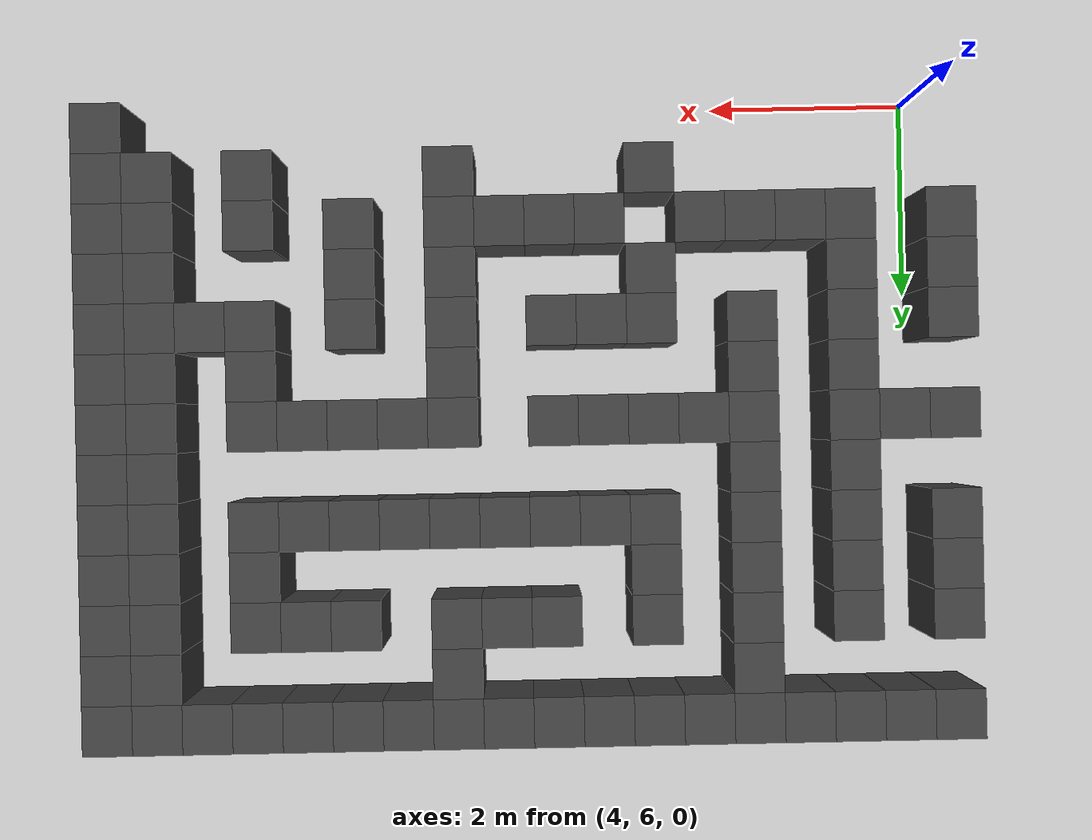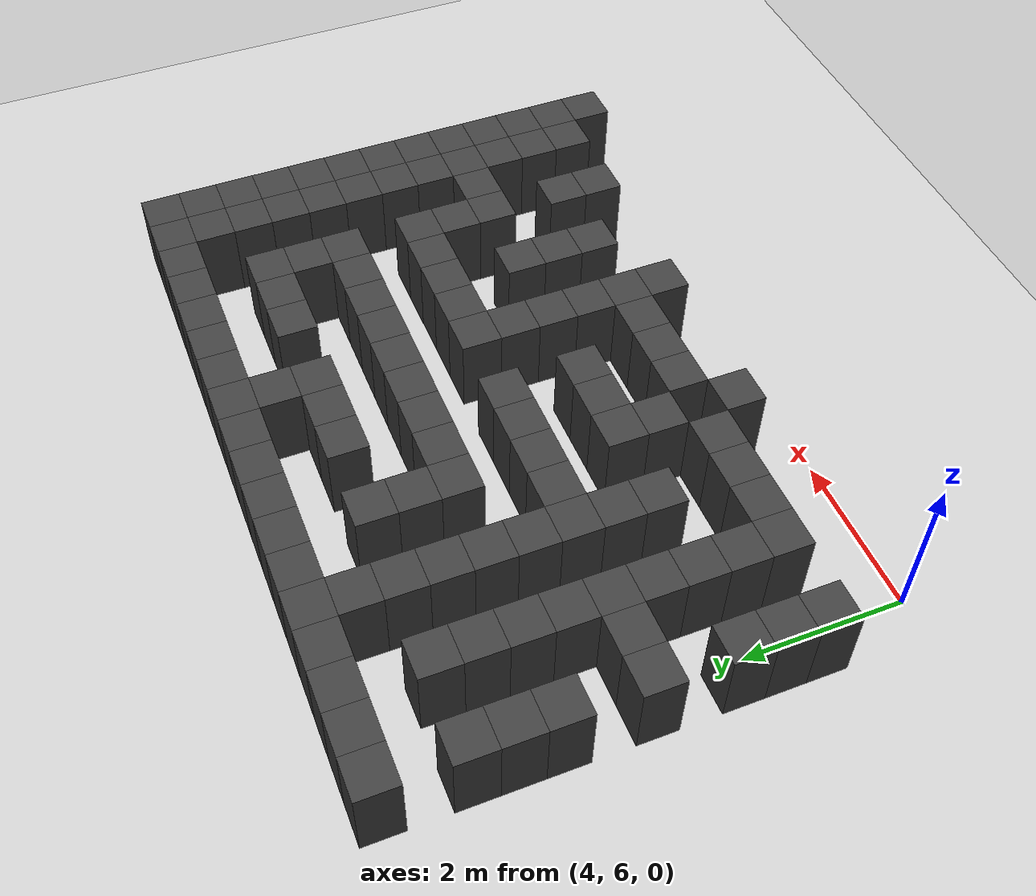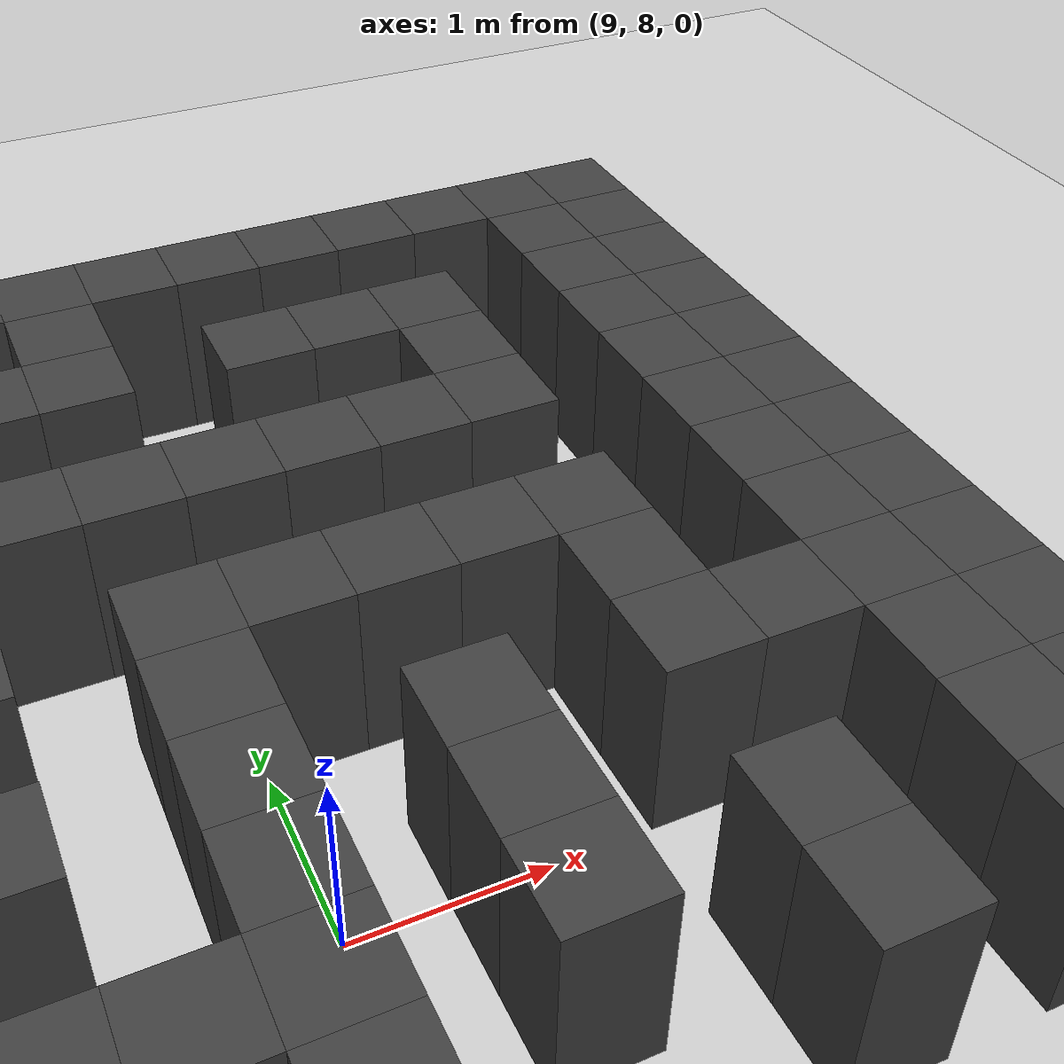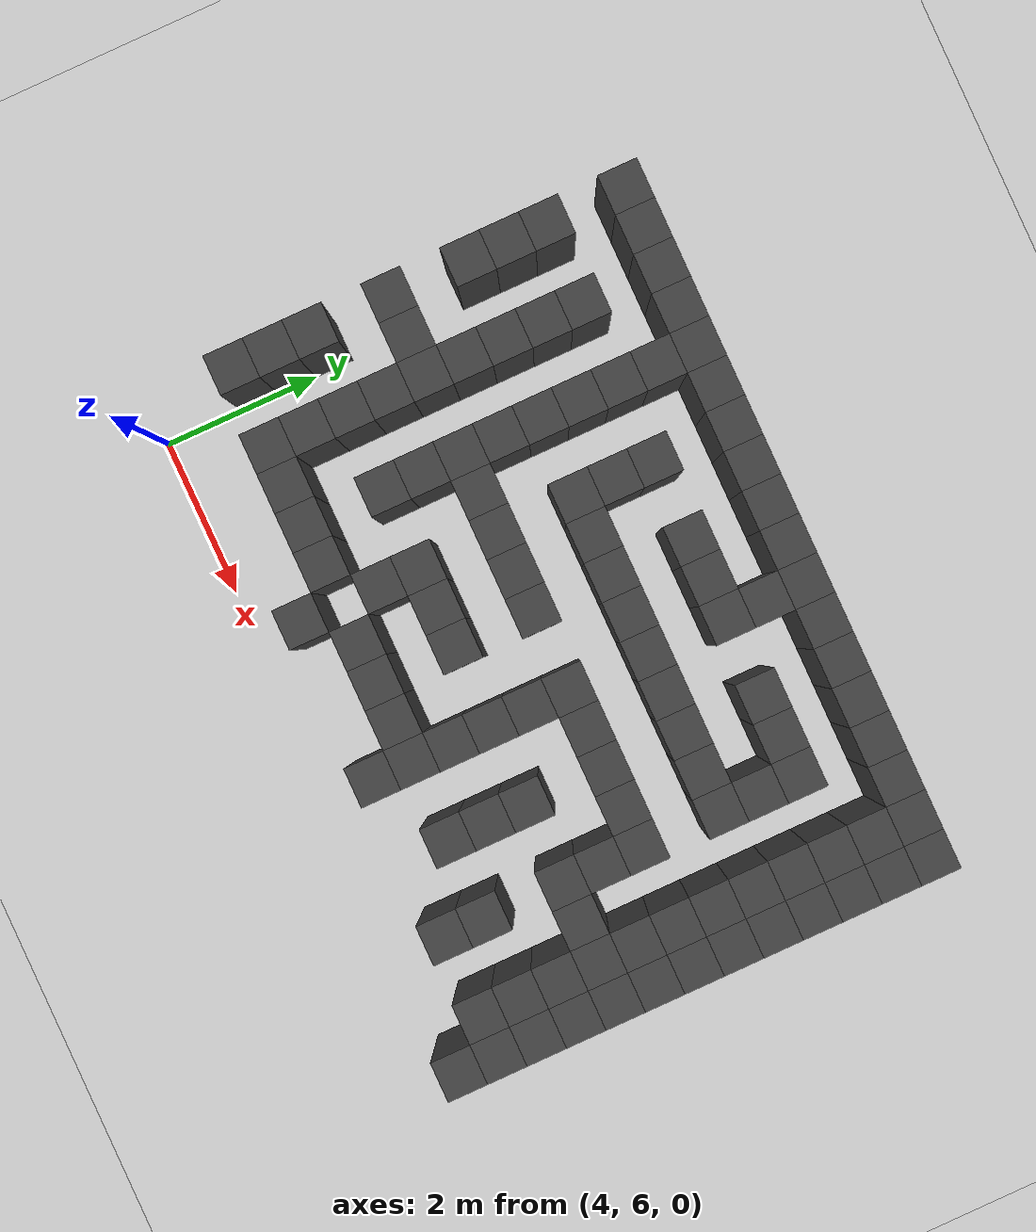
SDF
<sdf version="1.7">
 <world name="map_18313">
  <model name="ground_plane">
   <static>true</static>
   <link name="link">
    <collision name="collision">
     <geometry><plane><normal>0 0 1</normal><size>200 200</size></plane></geometry>
    </collision>
    <visual name="visual">
     <geometry><plane><normal>0 0 1</normal><size>200 200</size></plane></geometry>
     <material><ambient>0.8 0.8 0.8 1</ambient><diffuse>0.8 0.8 0.8 1</diffuse></material>
    </visual>
   </link>
  </model>
  <model name="maze_environment">
   <static>true</static>
   <link name="wall_32">
    <pose>3.750 12.250 0.500 0 0 0</pose>
    <collision name="col"><geometry><box><size>0.5 0.5 1.0</size></box></geometry></collision>
    <visual name="vis">
     <geometry><box><size>0.5 0.5 1.0</size></box></geometry>
     <material><ambient>0.15 0.15 0.15 1</ambient><diffuse>0.25 0.25 0.25 1</diffuse></material>
    </visual>
   </link>
   <link name="wall_33">
    <pose>4.250 12.250 0.500 0 0 0</pose>
    <collision name="col"><geometry><box><size>0.5 0.5 1.0</size></box></geometry></collision>
    <visual name="vis">
     <geometry><box><size>0.5 0.5 1.0</size></box></geometry>
     <material><ambient>0.15 0.15 0.15 1</ambient><diffuse>0.25 0.25 0.25 1</diffuse></material>
    </visual>
   </link>
   <link name="wall_34">
    <pose>4.750 12.250 0.500 0 0 0</pose>
    <collision name="col"><geometry><box><size>0.5 0.5 1.0</size></box></geometry></collision>
    <visual name="vis">
     <geometry><box><size>0.5 0.5 1.0</size></box></geometry>
     <material><ambient>0.15 0.15 0.15 1</ambient><diffuse>0.25 0.25 0.25 1</diffuse></material>
    </visual>
   </link>
   <link name="wall_35">
    <pose>5.250 12.250 0.500 0 0 0</pose>
    <collision name="col"><geometry><box><size>0.5 0.5 1.0</size></box></geometry></collision>
    <visual name="vis">
     <geometry><box><size>0.5 0.5 1.0</size></box></geometry>
     <material><ambient>0.15 0.15 0.15 1</ambient><diffuse>0.25 0.25 0.25 1</diffuse></material>
    </visual>
   </link>
   <link name="wall_36">
    <pose>5.750 12.250 0.500 0 0 0</pose>
    <collision name="col"><geometry><box><size>0.5 0.5 1.0</size></box></geometry></collision>
    <visual name="vis">
     <geometry><box><size>0.5 0.5 1.0</size></box></geometry>
     <material><ambient>0.15 0.15 0.15 1</ambient><diffuse>0.25 0.25 0.25 1</diffuse></material>
    </visual>
   </link>
   <link name="wall_37">
    <pose>6.250 12.250 0.500 0 0 0</pose>
    <collision name="col"><geometry><box><size>0.5 0.5 1.0</size></box></geometry></collision>
    <visual name="vis">
     <geometry><box><size>0.5 0.5 1.0</size></box></geometry>
     <material><ambient>0.15 0.15 0.15 1</ambient><diffuse>0.25 0.25 0.25 1</diffuse></material>
    </visual>
   </link>
   <link name="wall_38">
    <pose>6.750 12.250 0.500 0 0 0</pose>
    <collision name="col"><geometry><box><size>0.5 0.5 1.0</size></box></geometry></collision>
    <visual name="vis">
     <geometry><box><size>0.5 0.5 1.0</size></box></geometry>
     <material><ambient>0.15 0.15 0.15 1</ambient><diffuse>0.25 0.25 0.25 1</diffuse></material>
    </visual>
   </link>
   <link name="wall_39">
    <pose>7.250 12.250 0.500 0 0 0</pose>
    <collision name="col"><geometry><box><size>0.5 0.5 1.0</size></box></geometry></collision>
    <visual name="vis">
     <geometry><box><size>0.5 0.5 1.0</size></box></geometry>
     <material><ambient>0.15 0.15 0.15 1</ambient><diffuse>0.25 0.25 0.25 1</diffuse></material>
    </visual>
   </link>
   <link name="wall_40">
    <pose>7.750 12.250 0.500 0 0 0</pose>
    <collision name="col"><geometry><box><size>0.5 0.5 1.0</size></box></geometry></collision>
    <visual name="vis">
     <geometry><box><size>0.5 0.5 1.0</size></box></geometry>
     <material><ambient>0.15 0.15 0.15 1</ambient><diffuse>0.25 0.25 0.25 1</diffuse></material>
    </visual>
   </link>
   <link name="wall_41">
    <pose>8.250 12.250 0.500 0 0 0</pose>
    <collision name="col"><geometry><box><size>0.5 0.5 1.0</size></box></geometry></collision>
    <visual name="vis">
     <geometry><box><size>0.5 0.5 1.0</size></box></geometry>
     <material><ambient>0.15 0.15 0.15 1</ambient><diffuse>0.25 0.25 0.25 1</diffuse></material>
    </visual>
   </link>
   <link name="wall_42">
    <pose>8.750 12.250 0.500 0 0 0</pose>
    <collision name="col"><geometry><box><size>0.5 0.5 1.0</size></box></geometry></collision>
    <visual name="vis">
     <geometry><box><size>0.5 0.5 1.0</size></box></geometry>
     <material><ambient>0.15 0.15 0.15 1</ambient><diffuse>0.25 0.25 0.25 1</diffuse></material>
    </visual>
   </link>
   <link name="wall_43">
    <pose>9.250 12.250 0.500 0 0 0</pose>
    <collision name="col"><geometry><box><size>0.5 0.5 1.0</size></box></geometry></collision>
    <visual name="vis">
     <geometry><box><size>0.5 0.5 1.0</size></box></geometry>
     <material><ambient>0.15 0.15 0.15 1</ambient><diffuse>0.25 0.25 0.25 1</diffuse></material>
    </visual>
   </link>
   <link name="wall_44">
    <pose>9.750 12.250 0.500 0 0 0</pose>
    <collision name="col"><geometry><box><size>0.5 0.5 1.0</size></box></geometry></collision>
    <visual name="vis">
     <geometry><box><size>0.5 0.5 1.0</size></box></geometry>
     <material><ambient>0.15 0.15 0.15 1</ambient><diffuse>0.25 0.25 0.25 1</diffuse></material>
    </visual>
   </link>
   <link name="wall_45">
    <pose>10.250 12.250 0.500 0 0 0</pose>
    <collision name="col"><geometry><box><size>0.5 0.5 1.0</size></box></geometry></collision>
    <visual name="vis">
     <geometry><box><size>0.5 0.5 1.0</size></box></geometry>
     <material><ambient>0.15 0.15 0.15 1</ambient><diffuse>0.25 0.25 0.25 1</diffuse></material>
    </visual>
   </link>
   <link name="wall_46">
    <pose>10.750 12.250 0.500 0 0 0</pose>
    <collision name="col"><geometry><box><size>0.5 0.5 1.0</size></box></geometry></collision>
    <visual name="vis">
     <geometry><box><size>0.5 0.5 1.0</size></box></geometry>
     <material><ambient>0.15 0.15 0.15 1</ambient><diffuse>0.25 0.25 0.25 1</diffuse></material>
    </visual>
   </link>
   <link name="wall_47">
    <pose>11.250 12.250 0.500 0 0 0</pose>
    <collision name="col"><geometry><box><size>0.5 0.5 1.0</size></box></geometry></collision>
    <visual name="vis">
     <geometry><box><size>0.5 0.5 1.0</size></box></geometry>
     <material><ambient>0.15 0.15 0.15 1</ambient><diffuse>0.25 0.25 0.25 1</diffuse></material>
    </visual>
   </link>
   <link name="wall_48">
    <pose>11.750 12.250 0.500 0 0 0</pose>
    <collision name="col"><geometry><box><size>0.5 0.5 1.0</size></box></geometry></collision>
    <visual name="vis">
     <geometry><box><size>0.5 0.5 1.0</size></box></geometry>
     <material><ambient>0.15 0.15 0.15 1</ambient><diffuse>0.25 0.25 0.25 1</diffuse></material>
    </visual>
   </link>
   <link name="wall_49">
    <pose>12.250 12.250 0.500 0 0 0</pose>
    <collision name="col"><geometry><box><size>0.5 0.5 1.0</size></box></geometry></collision>
    <visual name="vis">
     <geometry><box><size>0.5 0.5 1.0</size></box></geometry>
     <material><ambient>0.15 0.15 0.15 1</ambient><diffuse>0.25 0.25 0.25 1</diffuse></material>
    </visual>
   </link>
   <link name="wall_56">
    <pose>5.750 11.750 0.500 0 0 0</pose>
    <collision name="col"><geometry><box><size>0.5 0.5 1.0</size></box></geometry></collision>
    <visual name="vis">
     <geometry><box><size>0.5 0.5 1.0</size></box></geometry>
     <material><ambient>0.15 0.15 0.15 1</ambient><diffuse>0.25 0.25 0.25 1</diffuse></material>
    </visual>
   </link>
   <link name="wall_57">
    <pose>8.750 11.750 0.500 0 0 0</pose>
    <collision name="col"><geometry><box><size>0.5 0.5 1.0</size></box></geometry></collision>
    <visual name="vis">
     <geometry><box><size>0.5 0.5 1.0</size></box></geometry>
     <material><ambient>0.15 0.15 0.15 1</ambient><diffuse>0.25 0.25 0.25 1</diffuse></material>
    </visual>
   </link>
   <link name="wall_58">
    <pose>11.750 11.750 0.500 0 0 0</pose>
    <collision name="col"><geometry><box><size>0.5 0.5 1.0</size></box></geometry></collision>
    <visual name="vis">
     <geometry><box><size>0.5 0.5 1.0</size></box></geometry>
     <material><ambient>0.15 0.15 0.15 1</ambient><diffuse>0.25 0.25 0.25 1</diffuse></material>
    </visual>
   </link>
   <link name="wall_59">
    <pose>12.250 11.750 0.500 0 0 0</pose>
    <collision name="col"><geometry><box><size>0.5 0.5 1.0</size></box></geometry></collision>
    <visual name="vis">
     <geometry><box><size>0.5 0.5 1.0</size></box></geometry>
     <material><ambient>0.15 0.15 0.15 1</ambient><diffuse>0.25 0.25 0.25 1</diffuse></material>
    </visual>
   </link>
   <link name="wall_81">
    <pose>3.750 11.250 0.500 0 0 0</pose>
    <collision name="col"><geometry><box><size>0.5 0.5 1.0</size></box></geometry></collision>
    <visual name="vis">
     <geometry><box><size>0.5 0.5 1.0</size></box></geometry>
     <material><ambient>0.15 0.15 0.15 1</ambient><diffuse>0.25 0.25 0.25 1</diffuse></material>
    </visual>
   </link>
   <link name="wall_82">
    <pose>4.750 11.250 0.500 0 0 0</pose>
    <collision name="col"><geometry><box><size>0.5 0.5 1.0</size></box></geometry></collision>
    <visual name="vis">
     <geometry><box><size>0.5 0.5 1.0</size></box></geometry>
     <material><ambient>0.15 0.15 0.15 1</ambient><diffuse>0.25 0.25 0.25 1</diffuse></material>
    </visual>
   </link>
   <link name="wall_83">
    <pose>5.750 11.250 0.500 0 0 0</pose>
    <collision name="col"><geometry><box><size>0.5 0.5 1.0</size></box></geometry></collision>
    <visual name="vis">
     <geometry><box><size>0.5 0.5 1.0</size></box></geometry>
     <material><ambient>0.15 0.15 0.15 1</ambient><diffuse>0.25 0.25 0.25 1</diffuse></material>
    </visual>
   </link>
   <link name="wall_84">
    <pose>6.750 11.250 0.500 0 0 0</pose>
    <collision name="col"><geometry><box><size>0.5 0.5 1.0</size></box></geometry></collision>
    <visual name="vis">
     <geometry><box><size>0.5 0.5 1.0</size></box></geometry>
     <material><ambient>0.15 0.15 0.15 1</ambient><diffuse>0.25 0.25 0.25 1</diffuse></material>
    </visual>
   </link>
   <link name="wall_85">
    <pose>7.750 11.250 0.500 0 0 0</pose>
    <collision name="col"><geometry><box><size>0.5 0.5 1.0</size></box></geometry></collision>
    <visual name="vis">
     <geometry><box><size>0.5 0.5 1.0</size></box></geometry>
     <material><ambient>0.15 0.15 0.15 1</ambient><diffuse>0.25 0.25 0.25 1</diffuse></material>
    </visual>
   </link>
   <link name="wall_86">
    <pose>8.250 11.250 0.500 0 0 0</pose>
    <collision name="col"><geometry><box><size>0.5 0.5 1.0</size></box></geometry></collision>
    <visual name="vis">
     <geometry><box><size>0.5 0.5 1.0</size></box></geometry>
     <material><ambient>0.15 0.15 0.15 1</ambient><diffuse>0.25 0.25 0.25 1</diffuse></material>
    </visual>
   </link>
   <link name="wall_87">
    <pose>8.750 11.250 0.500 0 0 0</pose>
    <collision name="col"><geometry><box><size>0.5 0.5 1.0</size></box></geometry></collision>
    <visual name="vis">
     <geometry><box><size>0.5 0.5 1.0</size></box></geometry>
     <material><ambient>0.15 0.15 0.15 1</ambient><diffuse>0.25 0.25 0.25 1</diffuse></material>
    </visual>
   </link>
   <link name="wall_88">
    <pose>9.750 11.250 0.500 0 0 0</pose>
    <collision name="col"><geometry><box><size>0.5 0.5 1.0</size></box></geometry></collision>
    <visual name="vis">
     <geometry><box><size>0.5 0.5 1.0</size></box></geometry>
     <material><ambient>0.15 0.15 0.15 1</ambient><diffuse>0.25 0.25 0.25 1</diffuse></material>
    </visual>
   </link>
   <link name="wall_89">
    <pose>10.250 11.250 0.500 0 0 0</pose>
    <collision name="col"><geometry><box><size>0.5 0.5 1.0</size></box></geometry></collision>
    <visual name="vis">
     <geometry><box><size>0.5 0.5 1.0</size></box></geometry>
     <material><ambient>0.15 0.15 0.15 1</ambient><diffuse>0.25 0.25 0.25 1</diffuse></material>
    </visual>
   </link>
   <link name="wall_90">
    <pose>10.750 11.250 0.500 0 0 0</pose>
    <collision name="col"><geometry><box><size>0.5 0.5 1.0</size></box></geometry></collision>
    <visual name="vis">
     <geometry><box><size>0.5 0.5 1.0</size></box></geometry>
     <material><ambient>0.15 0.15 0.15 1</ambient><diffuse>0.25 0.25 0.25 1</diffuse></material>
    </visual>
   </link>
   <link name="wall_91">
    <pose>11.750 11.250 0.500 0 0 0</pose>
    <collision name="col"><geometry><box><size>0.5 0.5 1.0</size></box></geometry></collision>
    <visual name="vis">
     <geometry><box><size>0.5 0.5 1.0</size></box></geometry>
     <material><ambient>0.15 0.15 0.15 1</ambient><diffuse>0.25 0.25 0.25 1</diffuse></material>
    </visual>
   </link>
   <link name="wall_92">
    <pose>12.250 11.250 0.500 0 0 0</pose>
    <collision name="col"><geometry><box><size>0.5 0.5 1.0</size></box></geometry></collision>
    <visual name="vis">
     <geometry><box><size>0.5 0.5 1.0</size></box></geometry>
     <material><ambient>0.15 0.15 0.15 1</ambient><diffuse>0.25 0.25 0.25 1</diffuse></material>
    </visual>
   </link>
   <link name="wall_102">
    <pose>3.750 10.750 0.500 0 0 0</pose>
    <collision name="col"><geometry><box><size>0.5 0.5 1.0</size></box></geometry></collision>
    <visual name="vis">
     <geometry><box><size>0.5 0.5 1.0</size></box></geometry>
     <material><ambient>0.15 0.15 0.15 1</ambient><diffuse>0.25 0.25 0.25 1</diffuse></material>
    </visual>
   </link>
   <link name="wall_103">
    <pose>4.750 10.750 0.500 0 0 0</pose>
    <collision name="col"><geometry><box><size>0.5 0.5 1.0</size></box></geometry></collision>
    <visual name="vis">
     <geometry><box><size>0.5 0.5 1.0</size></box></geometry>
     <material><ambient>0.15 0.15 0.15 1</ambient><diffuse>0.25 0.25 0.25 1</diffuse></material>
    </visual>
   </link>
   <link name="wall_104">
    <pose>5.750 10.750 0.500 0 0 0</pose>
    <collision name="col"><geometry><box><size>0.5 0.5 1.0</size></box></geometry></collision>
    <visual name="vis">
     <geometry><box><size>0.5 0.5 1.0</size></box></geometry>
     <material><ambient>0.15 0.15 0.15 1</ambient><diffuse>0.25 0.25 0.25 1</diffuse></material>
    </visual>
   </link>
   <link name="wall_105">
    <pose>6.750 10.750 0.500 0 0 0</pose>
    <collision name="col"><geometry><box><size>0.5 0.5 1.0</size></box></geometry></collision>
    <visual name="vis">
     <geometry><box><size>0.5 0.5 1.0</size></box></geometry>
     <material><ambient>0.15 0.15 0.15 1</ambient><diffuse>0.25 0.25 0.25 1</diffuse></material>
    </visual>
   </link>
   <link name="wall_106">
    <pose>10.750 10.750 0.500 0 0 0</pose>
    <collision name="col"><geometry><box><size>0.5 0.5 1.0</size></box></geometry></collision>
    <visual name="vis">
     <geometry><box><size>0.5 0.5 1.0</size></box></geometry>
     <material><ambient>0.15 0.15 0.15 1</ambient><diffuse>0.25 0.25 0.25 1</diffuse></material>
    </visual>
   </link>
   <link name="wall_107">
    <pose>11.750 10.750 0.500 0 0 0</pose>
    <collision name="col"><geometry><box><size>0.5 0.5 1.0</size></box></geometry></collision>
    <visual name="vis">
     <geometry><box><size>0.5 0.5 1.0</size></box></geometry>
     <material><ambient>0.15 0.15 0.15 1</ambient><diffuse>0.25 0.25 0.25 1</diffuse></material>
    </visual>
   </link>
   <link name="wall_108">
    <pose>12.250 10.750 0.500 0 0 0</pose>
    <collision name="col"><geometry><box><size>0.5 0.5 1.0</size></box></geometry></collision>
    <visual name="vis">
     <geometry><box><size>0.5 0.5 1.0</size></box></geometry>
     <material><ambient>0.15 0.15 0.15 1</ambient><diffuse>0.25 0.25 0.25 1</diffuse></material>
    </visual>
   </link>
   <link name="wall_132">
    <pose>3.750 10.250 0.500 0 0 0</pose>
    <collision name="col"><geometry><box><size>0.5 0.5 1.0</size></box></geometry></collision>
    <visual name="vis">
     <geometry><box><size>0.5 0.5 1.0</size></box></geometry>
     <material><ambient>0.15 0.15 0.15 1</ambient><diffuse>0.25 0.25 0.25 1</diffuse></material>
    </visual>
   </link>
   <link name="wall_133">
    <pose>4.750 10.250 0.500 0 0 0</pose>
    <collision name="col"><geometry><box><size>0.5 0.5 1.0</size></box></geometry></collision>
    <visual name="vis">
     <geometry><box><size>0.5 0.5 1.0</size></box></geometry>
     <material><ambient>0.15 0.15 0.15 1</ambient><diffuse>0.25 0.25 0.25 1</diffuse></material>
    </visual>
   </link>
   <link name="wall_134">
    <pose>5.750 10.250 0.500 0 0 0</pose>
    <collision name="col"><geometry><box><size>0.5 0.5 1.0</size></box></geometry></collision>
    <visual name="vis">
     <geometry><box><size>0.5 0.5 1.0</size></box></geometry>
     <material><ambient>0.15 0.15 0.15 1</ambient><diffuse>0.25 0.25 0.25 1</diffuse></material>
    </visual>
   </link>
   <link name="wall_135">
    <pose>6.750 10.250 0.500 0 0 0</pose>
    <collision name="col"><geometry><box><size>0.5 0.5 1.0</size></box></geometry></collision>
    <visual name="vis">
     <geometry><box><size>0.5 0.5 1.0</size></box></geometry>
     <material><ambient>0.15 0.15 0.15 1</ambient><diffuse>0.25 0.25 0.25 1</diffuse></material>
    </visual>
   </link>
   <link name="wall_136">
    <pose>7.250 10.250 0.500 0 0 0</pose>
    <collision name="col"><geometry><box><size>0.5 0.5 1.0</size></box></geometry></collision>
    <visual name="vis">
     <geometry><box><size>0.5 0.5 1.0</size></box></geometry>
     <material><ambient>0.15 0.15 0.15 1</ambient><diffuse>0.25 0.25 0.25 1</diffuse></material>
    </visual>
   </link>
   <link name="wall_137">
    <pose>7.750 10.250 0.500 0 0 0</pose>
    <collision name="col"><geometry><box><size>0.5 0.5 1.0</size></box></geometry></collision>
    <visual name="vis">
     <geometry><box><size>0.5 0.5 1.0</size></box></geometry>
     <material><ambient>0.15 0.15 0.15 1</ambient><diffuse>0.25 0.25 0.25 1</diffuse></material>
    </visual>
   </link>
   <link name="wall_138">
    <pose>8.250 10.250 0.500 0 0 0</pose>
    <collision name="col"><geometry><box><size>0.5 0.5 1.0</size></box></geometry></collision>
    <visual name="vis">
     <geometry><box><size>0.5 0.5 1.0</size></box></geometry>
     <material><ambient>0.15 0.15 0.15 1</ambient><diffuse>0.25 0.25 0.25 1</diffuse></material>
    </visual>
   </link>
   <link name="wall_139">
    <pose>8.750 10.250 0.500 0 0 0</pose>
    <collision name="col"><geometry><box><size>0.5 0.5 1.0</size></box></geometry></collision>
    <visual name="vis">
     <geometry><box><size>0.5 0.5 1.0</size></box></geometry>
     <material><ambient>0.15 0.15 0.15 1</ambient><diffuse>0.25 0.25 0.25 1</diffuse></material>
    </visual>
   </link>
   <link name="wall_140">
    <pose>9.250 10.250 0.500 0 0 0</pose>
    <collision name="col"><geometry><box><size>0.5 0.5 1.0</size></box></geometry></collision>
    <visual name="vis">
     <geometry><box><size>0.5 0.5 1.0</size></box></geometry>
     <material><ambient>0.15 0.15 0.15 1</ambient><diffuse>0.25 0.25 0.25 1</diffuse></material>
    </visual>
   </link>
   <link name="wall_141">
    <pose>9.750 10.250 0.500 0 0 0</pose>
    <collision name="col"><geometry><box><size>0.5 0.5 1.0</size></box></geometry></collision>
    <visual name="vis">
     <geometry><box><size>0.5 0.5 1.0</size></box></geometry>
     <material><ambient>0.15 0.15 0.15 1</ambient><diffuse>0.25 0.25 0.25 1</diffuse></material>
    </visual>
   </link>
   <link name="wall_142">
    <pose>10.250 10.250 0.500 0 0 0</pose>
    <collision name="col"><geometry><box><size>0.5 0.5 1.0</size></box></geometry></collision>
    <visual name="vis">
     <geometry><box><size>0.5 0.5 1.0</size></box></geometry>
     <material><ambient>0.15 0.15 0.15 1</ambient><diffuse>0.25 0.25 0.25 1</diffuse></material>
    </visual>
   </link>
   <link name="wall_143">
    <pose>10.750 10.250 0.500 0 0 0</pose>
    <collision name="col"><geometry><box><size>0.5 0.5 1.0</size></box></geometry></collision>
    <visual name="vis">
     <geometry><box><size>0.5 0.5 1.0</size></box></geometry>
     <material><ambient>0.15 0.15 0.15 1</ambient><diffuse>0.25 0.25 0.25 1</diffuse></material>
    </visual>
   </link>
   <link name="wall_144">
    <pose>11.750 10.250 0.500 0 0 0</pose>
    <collision name="col"><geometry><box><size>0.5 0.5 1.0</size></box></geometry></collision>
    <visual name="vis">
     <geometry><box><size>0.5 0.5 1.0</size></box></geometry>
     <material><ambient>0.15 0.15 0.15 1</ambient><diffuse>0.25 0.25 0.25 1</diffuse></material>
    </visual>
   </link>
   <link name="wall_145">
    <pose>12.250 10.250 0.500 0 0 0</pose>
    <collision name="col"><geometry><box><size>0.5 0.5 1.0</size></box></geometry></collision>
    <visual name="vis">
     <geometry><box><size>0.5 0.5 1.0</size></box></geometry>
     <material><ambient>0.15 0.15 0.15 1</ambient><diffuse>0.25 0.25 0.25 1</diffuse></material>
    </visual>
   </link>
   <link name="wall_157">
    <pose>4.750 9.750 0.500 0 0 0</pose>
    <collision name="col"><geometry><box><size>0.5 0.5 1.0</size></box></geometry></collision>
    <visual name="vis">
     <geometry><box><size>0.5 0.5 1.0</size></box></geometry>
     <material><ambient>0.15 0.15 0.15 1</ambient><diffuse>0.25 0.25 0.25 1</diffuse></material>
    </visual>
   </link>
   <link name="wall_158">
    <pose>5.750 9.750 0.500 0 0 0</pose>
    <collision name="col"><geometry><box><size>0.5 0.5 1.0</size></box></geometry></collision>
    <visual name="vis">
     <geometry><box><size>0.5 0.5 1.0</size></box></geometry>
     <material><ambient>0.15 0.15 0.15 1</ambient><diffuse>0.25 0.25 0.25 1</diffuse></material>
    </visual>
   </link>
   <link name="wall_159">
    <pose>11.750 9.750 0.500 0 0 0</pose>
    <collision name="col"><geometry><box><size>0.5 0.5 1.0</size></box></geometry></collision>
    <visual name="vis">
     <geometry><box><size>0.5 0.5 1.0</size></box></geometry>
     <material><ambient>0.15 0.15 0.15 1</ambient><diffuse>0.25 0.25 0.25 1</diffuse></material>
    </visual>
   </link>
   <link name="wall_160">
    <pose>12.250 9.750 0.500 0 0 0</pose>
    <collision name="col"><geometry><box><size>0.5 0.5 1.0</size></box></geometry></collision>
    <visual name="vis">
     <geometry><box><size>0.5 0.5 1.0</size></box></geometry>
     <material><ambient>0.15 0.15 0.15 1</ambient><diffuse>0.25 0.25 0.25 1</diffuse></material>
    </visual>
   </link>
   <link name="wall_180">
    <pose>3.750 9.250 0.500 0 0 0</pose>
    <collision name="col"><geometry><box><size>0.5 0.5 1.0</size></box></geometry></collision>
    <visual name="vis">
     <geometry><box><size>0.5 0.5 1.0</size></box></geometry>
     <material><ambient>0.15 0.15 0.15 1</ambient><diffuse>0.25 0.25 0.25 1</diffuse></material>
    </visual>
   </link>
   <link name="wall_181">
    <pose>4.250 9.250 0.500 0 0 0</pose>
    <collision name="col"><geometry><box><size>0.5 0.5 1.0</size></box></geometry></collision>
    <visual name="vis">
     <geometry><box><size>0.5 0.5 1.0</size></box></geometry>
     <material><ambient>0.15 0.15 0.15 1</ambient><diffuse>0.25 0.25 0.25 1</diffuse></material>
    </visual>
   </link>
   <link name="wall_182">
    <pose>4.750 9.250 0.500 0 0 0</pose>
    <collision name="col"><geometry><box><size>0.5 0.5 1.0</size></box></geometry></collision>
    <visual name="vis">
     <geometry><box><size>0.5 0.5 1.0</size></box></geometry>
     <material><ambient>0.15 0.15 0.15 1</ambient><diffuse>0.25 0.25 0.25 1</diffuse></material>
    </visual>
   </link>
   <link name="wall_183">
    <pose>5.750 9.250 0.500 0 0 0</pose>
    <collision name="col"><geometry><box><size>0.5 0.5 1.0</size></box></geometry></collision>
    <visual name="vis">
     <geometry><box><size>0.5 0.5 1.0</size></box></geometry>
     <material><ambient>0.15 0.15 0.15 1</ambient><diffuse>0.25 0.25 0.25 1</diffuse></material>
    </visual>
   </link>
   <link name="wall_184">
    <pose>6.250 9.250 0.500 0 0 0</pose>
    <collision name="col"><geometry><box><size>0.5 0.5 1.0</size></box></geometry></collision>
    <visual name="vis">
     <geometry><box><size>0.5 0.5 1.0</size></box></geometry>
     <material><ambient>0.15 0.15 0.15 1</ambient><diffuse>0.25 0.25 0.25 1</diffuse></material>
    </visual>
   </link>
   <link name="wall_185">
    <pose>6.750 9.250 0.500 0 0 0</pose>
    <collision name="col"><geometry><box><size>0.5 0.5 1.0</size></box></geometry></collision>
    <visual name="vis">
     <geometry><box><size>0.5 0.5 1.0</size></box></geometry>
     <material><ambient>0.15 0.15 0.15 1</ambient><diffuse>0.25 0.25 0.25 1</diffuse></material>
    </visual>
   </link>
   <link name="wall_186">
    <pose>7.250 9.250 0.500 0 0 0</pose>
    <collision name="col"><geometry><box><size>0.5 0.5 1.0</size></box></geometry></collision>
    <visual name="vis">
     <geometry><box><size>0.5 0.5 1.0</size></box></geometry>
     <material><ambient>0.15 0.15 0.15 1</ambient><diffuse>0.25 0.25 0.25 1</diffuse></material>
    </visual>
   </link>
   <link name="wall_187">
    <pose>7.750 9.250 0.500 0 0 0</pose>
    <collision name="col"><geometry><box><size>0.5 0.5 1.0</size></box></geometry></collision>
    <visual name="vis">
     <geometry><box><size>0.5 0.5 1.0</size></box></geometry>
     <material><ambient>0.15 0.15 0.15 1</ambient><diffuse>0.25 0.25 0.25 1</diffuse></material>
    </visual>
   </link>
   <link name="wall_188">
    <pose>8.750 9.250 0.500 0 0 0</pose>
    <collision name="col"><geometry><box><size>0.5 0.5 1.0</size></box></geometry></collision>
    <visual name="vis">
     <geometry><box><size>0.5 0.5 1.0</size></box></geometry>
     <material><ambient>0.15 0.15 0.15 1</ambient><diffuse>0.25 0.25 0.25 1</diffuse></material>
    </visual>
   </link>
   <link name="wall_189">
    <pose>9.250 9.250 0.500 0 0 0</pose>
    <collision name="col"><geometry><box><size>0.5 0.5 1.0</size></box></geometry></collision>
    <visual name="vis">
     <geometry><box><size>0.5 0.5 1.0</size></box></geometry>
     <material><ambient>0.15 0.15 0.15 1</ambient><diffuse>0.25 0.25 0.25 1</diffuse></material>
    </visual>
   </link>
   <link name="wall_190">
    <pose>9.750 9.250 0.500 0 0 0</pose>
    <collision name="col"><geometry><box><size>0.5 0.5 1.0</size></box></geometry></collision>
    <visual name="vis">
     <geometry><box><size>0.5 0.5 1.0</size></box></geometry>
     <material><ambient>0.15 0.15 0.15 1</ambient><diffuse>0.25 0.25 0.25 1</diffuse></material>
    </visual>
   </link>
   <link name="wall_191">
    <pose>10.250 9.250 0.500 0 0 0</pose>
    <collision name="col"><geometry><box><size>0.5 0.5 1.0</size></box></geometry></collision>
    <visual name="vis">
     <geometry><box><size>0.5 0.5 1.0</size></box></geometry>
     <material><ambient>0.15 0.15 0.15 1</ambient><diffuse>0.25 0.25 0.25 1</diffuse></material>
    </visual>
   </link>
   <link name="wall_192">
    <pose>10.750 9.250 0.500 0 0 0</pose>
    <collision name="col"><geometry><box><size>0.5 0.5 1.0</size></box></geometry></collision>
    <visual name="vis">
     <geometry><box><size>0.5 0.5 1.0</size></box></geometry>
     <material><ambient>0.15 0.15 0.15 1</ambient><diffuse>0.25 0.25 0.25 1</diffuse></material>
    </visual>
   </link>
   <link name="wall_193">
    <pose>11.750 9.250 0.500 0 0 0</pose>
    <collision name="col"><geometry><box><size>0.5 0.5 1.0</size></box></geometry></collision>
    <visual name="vis">
     <geometry><box><size>0.5 0.5 1.0</size></box></geometry>
     <material><ambient>0.15 0.15 0.15 1</ambient><diffuse>0.25 0.25 0.25 1</diffuse></material>
    </visual>
   </link>
   <link name="wall_194">
    <pose>12.250 9.250 0.500 0 0 0</pose>
    <collision name="col"><geometry><box><size>0.5 0.5 1.0</size></box></geometry></collision>
    <visual name="vis">
     <geometry><box><size>0.5 0.5 1.0</size></box></geometry>
     <material><ambient>0.15 0.15 0.15 1</ambient><diffuse>0.25 0.25 0.25 1</diffuse></material>
    </visual>
   </link>
   <link name="wall_204">
    <pose>4.750 8.750 0.500 0 0 0</pose>
    <collision name="col"><geometry><box><size>0.5 0.5 1.0</size></box></geometry></collision>
    <visual name="vis">
     <geometry><box><size>0.5 0.5 1.0</size></box></geometry>
     <material><ambient>0.15 0.15 0.15 1</ambient><diffuse>0.25 0.25 0.25 1</diffuse></material>
    </visual>
   </link>
   <link name="wall_205">
    <pose>5.750 8.750 0.500 0 0 0</pose>
    <collision name="col"><geometry><box><size>0.5 0.5 1.0</size></box></geometry></collision>
    <visual name="vis">
     <geometry><box><size>0.5 0.5 1.0</size></box></geometry>
     <material><ambient>0.15 0.15 0.15 1</ambient><diffuse>0.25 0.25 0.25 1</diffuse></material>
    </visual>
   </link>
   <link name="wall_206">
    <pose>8.750 8.750 0.500 0 0 0</pose>
    <collision name="col"><geometry><box><size>0.5 0.5 1.0</size></box></geometry></collision>
    <visual name="vis">
     <geometry><box><size>0.5 0.5 1.0</size></box></geometry>
     <material><ambient>0.15 0.15 0.15 1</ambient><diffuse>0.25 0.25 0.25 1</diffuse></material>
    </visual>
   </link>
   <link name="wall_207">
    <pose>10.750 8.750 0.500 0 0 0</pose>
    <collision name="col"><geometry><box><size>0.5 0.5 1.0</size></box></geometry></collision>
    <visual name="vis">
     <geometry><box><size>0.5 0.5 1.0</size></box></geometry>
     <material><ambient>0.15 0.15 0.15 1</ambient><diffuse>0.25 0.25 0.25 1</diffuse></material>
    </visual>
   </link>
   <link name="wall_208">
    <pose>11.750 8.750 0.500 0 0 0</pose>
    <collision name="col"><geometry><box><size>0.5 0.5 1.0</size></box></geometry></collision>
    <visual name="vis">
     <geometry><box><size>0.5 0.5 1.0</size></box></geometry>
     <material><ambient>0.15 0.15 0.15 1</ambient><diffuse>0.25 0.25 0.25 1</diffuse></material>
    </visual>
   </link>
   <link name="wall_209">
    <pose>12.250 8.750 0.500 0 0 0</pose>
    <collision name="col"><geometry><box><size>0.5 0.5 1.0</size></box></geometry></collision>
    <visual name="vis">
     <geometry><box><size>0.5 0.5 1.0</size></box></geometry>
     <material><ambient>0.15 0.15 0.15 1</ambient><diffuse>0.25 0.25 0.25 1</diffuse></material>
    </visual>
   </link>
   <link name="wall_233">
    <pose>3.750 8.250 0.500 0 0 0</pose>
    <collision name="col"><geometry><box><size>0.5 0.5 1.0</size></box></geometry></collision>
    <visual name="vis">
     <geometry><box><size>0.5 0.5 1.0</size></box></geometry>
     <material><ambient>0.15 0.15 0.15 1</ambient><diffuse>0.25 0.25 0.25 1</diffuse></material>
    </visual>
   </link>
   <link name="wall_234">
    <pose>4.750 8.250 0.500 0 0 0</pose>
    <collision name="col"><geometry><box><size>0.5 0.5 1.0</size></box></geometry></collision>
    <visual name="vis">
     <geometry><box><size>0.5 0.5 1.0</size></box></geometry>
     <material><ambient>0.15 0.15 0.15 1</ambient><diffuse>0.25 0.25 0.25 1</diffuse></material>
    </visual>
   </link>
   <link name="wall_235">
    <pose>5.750 8.250 0.500 0 0 0</pose>
    <collision name="col"><geometry><box><size>0.5 0.5 1.0</size></box></geometry></collision>
    <visual name="vis">
     <geometry><box><size>0.5 0.5 1.0</size></box></geometry>
     <material><ambient>0.15 0.15 0.15 1</ambient><diffuse>0.25 0.25 0.25 1</diffuse></material>
    </visual>
   </link>
   <link name="wall_236">
    <pose>6.750 8.250 0.500 0 0 0</pose>
    <collision name="col"><geometry><box><size>0.5 0.5 1.0</size></box></geometry></collision>
    <visual name="vis">
     <geometry><box><size>0.5 0.5 1.0</size></box></geometry>
     <material><ambient>0.15 0.15 0.15 1</ambient><diffuse>0.25 0.25 0.25 1</diffuse></material>
    </visual>
   </link>
   <link name="wall_237">
    <pose>7.250 8.250 0.500 0 0 0</pose>
    <collision name="col"><geometry><box><size>0.5 0.5 1.0</size></box></geometry></collision>
    <visual name="vis">
     <geometry><box><size>0.5 0.5 1.0</size></box></geometry>
     <material><ambient>0.15 0.15 0.15 1</ambient><diffuse>0.25 0.25 0.25 1</diffuse></material>
    </visual>
   </link>
   <link name="wall_238">
    <pose>7.750 8.250 0.500 0 0 0</pose>
    <collision name="col"><geometry><box><size>0.5 0.5 1.0</size></box></geometry></collision>
    <visual name="vis">
     <geometry><box><size>0.5 0.5 1.0</size></box></geometry>
     <material><ambient>0.15 0.15 0.15 1</ambient><diffuse>0.25 0.25 0.25 1</diffuse></material>
    </visual>
   </link>
   <link name="wall_239">
    <pose>8.750 8.250 0.500 0 0 0</pose>
    <collision name="col"><geometry><box><size>0.5 0.5 1.0</size></box></geometry></collision>
    <visual name="vis">
     <geometry><box><size>0.5 0.5 1.0</size></box></geometry>
     <material><ambient>0.15 0.15 0.15 1</ambient><diffuse>0.25 0.25 0.25 1</diffuse></material>
    </visual>
   </link>
   <link name="wall_240">
    <pose>9.750 8.250 0.500 0 0 0</pose>
    <collision name="col"><geometry><box><size>0.5 0.5 1.0</size></box></geometry></collision>
    <visual name="vis">
     <geometry><box><size>0.5 0.5 1.0</size></box></geometry>
     <material><ambient>0.15 0.15 0.15 1</ambient><diffuse>0.25 0.25 0.25 1</diffuse></material>
    </visual>
   </link>
   <link name="wall_241">
    <pose>10.750 8.250 0.500 0 0 0</pose>
    <collision name="col"><geometry><box><size>0.5 0.5 1.0</size></box></geometry></collision>
    <visual name="vis">
     <geometry><box><size>0.5 0.5 1.0</size></box></geometry>
     <material><ambient>0.15 0.15 0.15 1</ambient><diffuse>0.25 0.25 0.25 1</diffuse></material>
    </visual>
   </link>
   <link name="wall_242">
    <pose>11.250 8.250 0.500 0 0 0</pose>
    <collision name="col"><geometry><box><size>0.5 0.5 1.0</size></box></geometry></collision>
    <visual name="vis">
     <geometry><box><size>0.5 0.5 1.0</size></box></geometry>
     <material><ambient>0.15 0.15 0.15 1</ambient><diffuse>0.25 0.25 0.25 1</diffuse></material>
    </visual>
   </link>
   <link name="wall_243">
    <pose>11.750 8.250 0.500 0 0 0</pose>
    <collision name="col"><geometry><box><size>0.5 0.5 1.0</size></box></geometry></collision>
    <visual name="vis">
     <geometry><box><size>0.5 0.5 1.0</size></box></geometry>
     <material><ambient>0.15 0.15 0.15 1</ambient><diffuse>0.25 0.25 0.25 1</diffuse></material>
    </visual>
   </link>
   <link name="wall_244">
    <pose>12.250 8.250 0.500 0 0 0</pose>
    <collision name="col"><geometry><box><size>0.5 0.5 1.0</size></box></geometry></collision>
    <visual name="vis">
     <geometry><box><size>0.5 0.5 1.0</size></box></geometry>
     <material><ambient>0.15 0.15 0.15 1</ambient><diffuse>0.25 0.25 0.25 1</diffuse></material>
    </visual>
   </link>
   <link name="wall_252">
    <pose>3.750 7.750 0.500 0 0 0</pose>
    <collision name="col"><geometry><box><size>0.5 0.5 1.0</size></box></geometry></collision>
    <visual name="vis">
     <geometry><box><size>0.5 0.5 1.0</size></box></geometry>
     <material><ambient>0.15 0.15 0.15 1</ambient><diffuse>0.25 0.25 0.25 1</diffuse></material>
    </visual>
   </link>
   <link name="wall_253">
    <pose>4.750 7.750 0.500 0 0 0</pose>
    <collision name="col"><geometry><box><size>0.5 0.5 1.0</size></box></geometry></collision>
    <visual name="vis">
     <geometry><box><size>0.5 0.5 1.0</size></box></geometry>
     <material><ambient>0.15 0.15 0.15 1</ambient><diffuse>0.25 0.25 0.25 1</diffuse></material>
    </visual>
   </link>
   <link name="wall_254">
    <pose>6.750 7.750 0.500 0 0 0</pose>
    <collision name="col"><geometry><box><size>0.5 0.5 1.0</size></box></geometry></collision>
    <visual name="vis">
     <geometry><box><size>0.5 0.5 1.0</size></box></geometry>
     <material><ambient>0.15 0.15 0.15 1</ambient><diffuse>0.25 0.25 0.25 1</diffuse></material>
    </visual>
   </link>
   <link name="wall_255">
    <pose>8.750 7.750 0.500 0 0 0</pose>
    <collision name="col"><geometry><box><size>0.5 0.5 1.0</size></box></geometry></collision>
    <visual name="vis">
     <geometry><box><size>0.5 0.5 1.0</size></box></geometry>
     <material><ambient>0.15 0.15 0.15 1</ambient><diffuse>0.25 0.25 0.25 1</diffuse></material>
    </visual>
   </link>
   <link name="wall_256">
    <pose>9.750 7.750 0.500 0 0 0</pose>
    <collision name="col"><geometry><box><size>0.5 0.5 1.0</size></box></geometry></collision>
    <visual name="vis">
     <geometry><box><size>0.5 0.5 1.0</size></box></geometry>
     <material><ambient>0.15 0.15 0.15 1</ambient><diffuse>0.25 0.25 0.25 1</diffuse></material>
    </visual>
   </link>
   <link name="wall_257">
    <pose>11.750 7.750 0.500 0 0 0</pose>
    <collision name="col"><geometry><box><size>0.5 0.5 1.0</size></box></geometry></collision>
    <visual name="vis">
     <geometry><box><size>0.5 0.5 1.0</size></box></geometry>
     <material><ambient>0.15 0.15 0.15 1</ambient><diffuse>0.25 0.25 0.25 1</diffuse></material>
    </visual>
   </link>
   <link name="wall_258">
    <pose>12.250 7.750 0.500 0 0 0</pose>
    <collision name="col"><geometry><box><size>0.5 0.5 1.0</size></box></geometry></collision>
    <visual name="vis">
     <geometry><box><size>0.5 0.5 1.0</size></box></geometry>
     <material><ambient>0.15 0.15 0.15 1</ambient><diffuse>0.25 0.25 0.25 1</diffuse></material>
    </visual>
   </link>
   <link name="wall_281">
    <pose>3.750 7.250 0.500 0 0 0</pose>
    <collision name="col"><geometry><box><size>0.5 0.5 1.0</size></box></geometry></collision>
    <visual name="vis">
     <geometry><box><size>0.5 0.5 1.0</size></box></geometry>
     <material><ambient>0.15 0.15 0.15 1</ambient><diffuse>0.25 0.25 0.25 1</diffuse></material>
    </visual>
   </link>
   <link name="wall_282">
    <pose>4.750 7.250 0.500 0 0 0</pose>
    <collision name="col"><geometry><box><size>0.5 0.5 1.0</size></box></geometry></collision>
    <visual name="vis">
     <geometry><box><size>0.5 0.5 1.0</size></box></geometry>
     <material><ambient>0.15 0.15 0.15 1</ambient><diffuse>0.25 0.25 0.25 1</diffuse></material>
    </visual>
   </link>
   <link name="wall_283">
    <pose>5.250 7.250 0.500 0 0 0</pose>
    <collision name="col"><geometry><box><size>0.5 0.5 1.0</size></box></geometry></collision>
    <visual name="vis">
     <geometry><box><size>0.5 0.5 1.0</size></box></geometry>
     <material><ambient>0.15 0.15 0.15 1</ambient><diffuse>0.25 0.25 0.25 1</diffuse></material>
    </visual>
   </link>
   <link name="wall_284">
    <pose>5.750 7.250 0.500 0 0 0</pose>
    <collision name="col"><geometry><box><size>0.5 0.5 1.0</size></box></geometry></collision>
    <visual name="vis">
     <geometry><box><size>0.5 0.5 1.0</size></box></geometry>
     <material><ambient>0.15 0.15 0.15 1</ambient><diffuse>0.25 0.25 0.25 1</diffuse></material>
    </visual>
   </link>
   <link name="wall_285">
    <pose>6.250 7.250 0.500 0 0 0</pose>
    <collision name="col"><geometry><box><size>0.5 0.5 1.0</size></box></geometry></collision>
    <visual name="vis">
     <geometry><box><size>0.5 0.5 1.0</size></box></geometry>
     <material><ambient>0.15 0.15 0.15 1</ambient><diffuse>0.25 0.25 0.25 1</diffuse></material>
    </visual>
   </link>
   <link name="wall_286">
    <pose>7.250 7.250 0.500 0 0 0</pose>
    <collision name="col"><geometry><box><size>0.5 0.5 1.0</size></box></geometry></collision>
    <visual name="vis">
     <geometry><box><size>0.5 0.5 1.0</size></box></geometry>
     <material><ambient>0.15 0.15 0.15 1</ambient><diffuse>0.25 0.25 0.25 1</diffuse></material>
    </visual>
   </link>
   <link name="wall_287">
    <pose>7.750 7.250 0.500 0 0 0</pose>
    <collision name="col"><geometry><box><size>0.5 0.5 1.0</size></box></geometry></collision>
    <visual name="vis">
     <geometry><box><size>0.5 0.5 1.0</size></box></geometry>
     <material><ambient>0.15 0.15 0.15 1</ambient><diffuse>0.25 0.25 0.25 1</diffuse></material>
    </visual>
   </link>
   <link name="wall_288">
    <pose>8.250 7.250 0.500 0 0 0</pose>
    <collision name="col"><geometry><box><size>0.5 0.5 1.0</size></box></geometry></collision>
    <visual name="vis">
     <geometry><box><size>0.5 0.5 1.0</size></box></geometry>
     <material><ambient>0.15 0.15 0.15 1</ambient><diffuse>0.25 0.25 0.25 1</diffuse></material>
    </visual>
   </link>
   <link name="wall_289">
    <pose>8.750 7.250 0.500 0 0 0</pose>
    <collision name="col"><geometry><box><size>0.5 0.5 1.0</size></box></geometry></collision>
    <visual name="vis">
     <geometry><box><size>0.5 0.5 1.0</size></box></geometry>
     <material><ambient>0.15 0.15 0.15 1</ambient><diffuse>0.25 0.25 0.25 1</diffuse></material>
    </visual>
   </link>
   <link name="wall_290">
    <pose>9.750 7.250 0.500 0 0 0</pose>
    <collision name="col"><geometry><box><size>0.5 0.5 1.0</size></box></geometry></collision>
    <visual name="vis">
     <geometry><box><size>0.5 0.5 1.0</size></box></geometry>
     <material><ambient>0.15 0.15 0.15 1</ambient><diffuse>0.25 0.25 0.25 1</diffuse></material>
    </visual>
   </link>
   <link name="wall_291">
    <pose>10.750 7.250 0.500 0 0 0</pose>
    <collision name="col"><geometry><box><size>0.5 0.5 1.0</size></box></geometry></collision>
    <visual name="vis">
     <geometry><box><size>0.5 0.5 1.0</size></box></geometry>
     <material><ambient>0.15 0.15 0.15 1</ambient><diffuse>0.25 0.25 0.25 1</diffuse></material>
    </visual>
   </link>
   <link name="wall_292">
    <pose>11.750 7.250 0.500 0 0 0</pose>
    <collision name="col"><geometry><box><size>0.5 0.5 1.0</size></box></geometry></collision>
    <visual name="vis">
     <geometry><box><size>0.5 0.5 1.0</size></box></geometry>
     <material><ambient>0.15 0.15 0.15 1</ambient><diffuse>0.25 0.25 0.25 1</diffuse></material>
    </visual>
   </link>
   <link name="wall_293">
    <pose>12.250 7.250 0.500 0 0 0</pose>
    <collision name="col"><geometry><box><size>0.5 0.5 1.0</size></box></geometry></collision>
    <visual name="vis">
     <geometry><box><size>0.5 0.5 1.0</size></box></geometry>
     <material><ambient>0.15 0.15 0.15 1</ambient><diffuse>0.25 0.25 0.25 1</diffuse></material>
    </visual>
   </link>
   <link name="wall_305">
    <pose>6.750 6.750 0.500 0 0 0</pose>
    <collision name="col"><geometry><box><size>0.5 0.5 1.0</size></box></geometry></collision>
    <visual name="vis">
     <geometry><box><size>0.5 0.5 1.0</size></box></geometry>
     <material><ambient>0.15 0.15 0.15 1</ambient><diffuse>0.25 0.25 0.25 1</diffuse></material>
    </visual>
   </link>
   <link name="wall_306">
    <pose>8.750 6.750 0.500 0 0 0</pose>
    <collision name="col"><geometry><box><size>0.5 0.5 1.0</size></box></geometry></collision>
    <visual name="vis">
     <geometry><box><size>0.5 0.5 1.0</size></box></geometry>
     <material><ambient>0.15 0.15 0.15 1</ambient><diffuse>0.25 0.25 0.25 1</diffuse></material>
    </visual>
   </link>
   <link name="wall_307">
    <pose>10.750 6.750 0.500 0 0 0</pose>
    <collision name="col"><geometry><box><size>0.5 0.5 1.0</size></box></geometry></collision>
    <visual name="vis">
     <geometry><box><size>0.5 0.5 1.0</size></box></geometry>
     <material><ambient>0.15 0.15 0.15 1</ambient><diffuse>0.25 0.25 0.25 1</diffuse></material>
    </visual>
   </link>
   <link name="wall_308">
    <pose>11.750 6.750 0.500 0 0 0</pose>
    <collision name="col"><geometry><box><size>0.5 0.5 1.0</size></box></geometry></collision>
    <visual name="vis">
     <geometry><box><size>0.5 0.5 1.0</size></box></geometry>
     <material><ambient>0.15 0.15 0.15 1</ambient><diffuse>0.25 0.25 0.25 1</diffuse></material>
    </visual>
   </link>
   <link name="wall_309">
    <pose>12.250 6.750 0.500 0 0 0</pose>
    <collision name="col"><geometry><box><size>0.5 0.5 1.0</size></box></geometry></collision>
    <visual name="vis">
     <geometry><box><size>0.5 0.5 1.0</size></box></geometry>
     <material><ambient>0.15 0.15 0.15 1</ambient><diffuse>0.25 0.25 0.25 1</diffuse></material>
    </visual>
   </link>
   <link name="wall_345">
    <pose>12.250 6.250 0.500 0 0 0</pose>
    <collision name="col"><geometry><box><size>0.5 0.5 1.0</size></box></geometry></collision>
    <visual name="vis">
     <geometry><box><size>0.5 0.5 1.0</size></box></geometry>
     <material><ambient>0.15 0.15 0.15 1</ambient><diffuse>0.25 0.25 0.25 1</diffuse></material>
    </visual>
   </link>
  </model>
 </world>
</sdf>
